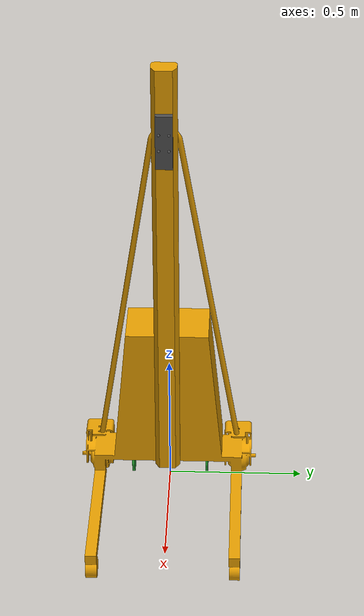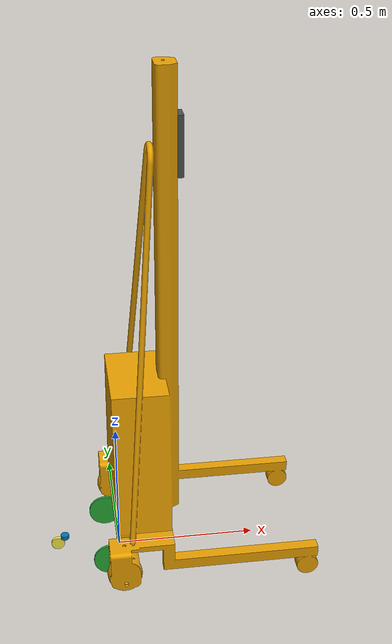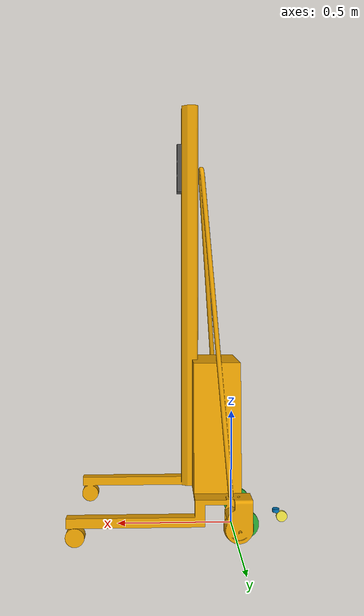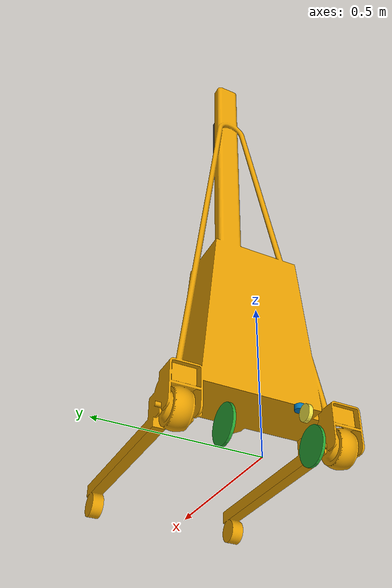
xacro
<?xml version="1.0" encoding="UTF-8"?>
<robot name="minilift" xmlns:xacro="http://ros.org/wiki/xacro">

<xacro:include filename="$(find minilift_description)/urdf/lfl.urdf.xacro" />
<xacro:lfl_base prefix="BMR001"/>

<!-- common stuff -->
<xacro:include filename="$(find ur_description)/urdf/common.gazebo.xacro" />

</robot>

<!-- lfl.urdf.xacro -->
<robot  xmlns:xacro="http://ros.org/wiki/xacro"
        name="lfl" >

<xacro:macro name="lfl_base" params="prefix">

    <xacro:include filename="$(find minilift_description)/urdf/caster.urdf.xacro" />
    <xacro:include filename="$(find minilift_description)/urdf/wheel.urdf.xacro" />
    <xacro:include filename="$(find minilift_description)/urdf/materials.urdf.xacro" />

    <xacro:arg name="mesh_enabled" default="false" />
    <xacro:arg name="robot_namespace" default="/"/>

    <link   name = "${prefix}_lfl_base">
        <inertial>
            <origin xyz="-0.108 0 -0.02579" rpy="0 0 0"/>
            <mass value="3.978"/>
            <inertia ixx="0.021858680" ixy="0.0" ixz="0.010020353"
                    iyy="0.078572349" iyz="-0.0"
                    izz="0.091971324"/>
        </inertial>
        <visual>
                <origin xyz="0 0 0" rpy="0 0 0" />
                <geometry>
                    <mesh filename="package://minilift_description/meshes/visual/LFL_xyz.stl" />
                </geometry>
        </visual>
        <collision>
                <origin xyz="0 0 0" rpy="0 0 0" />
                <geometry>
                    <mesh filename="package://minilift_description/meshes/visual/LFL_xyz.stl" />
                </geometry>
        </collision>
    </link>

    <link   name =  "${prefix}_base_footprint"/>

    <joint name = "${prefix}_base_joint"  type = "fixed">
        <parent link="${prefix}_base_footprint"/>
        <child link="${prefix}_lfl_base"/>
        <origin xyz="0.0 0.0 0.09188" rpy="0 0 0" />
        <axis xyz="0 1 0" rpy="0 0 0" />
    </joint>

 <!-- LIFTPLATE -->

  <link name="${prefix}_lfl_liftplate">
    <visual>
      <origin xyz="0 0 0" rpy="0 0 3.14159"/>
      <geometry>
        <mesh filename="package://minilift_description/meshes/visual/LFL_liftplate.stl"/>
      </geometry>
      <material name="dark_grey"/>
    </visual>
    <collision>
      <origin xyz="0 0 0" rpy="0 0 3.14159"/>
      <geometry>
        <mesh filename="package://minilift_description/meshes/collision/LFL_liftplate.stl"/>
      </geometry>
    </collision>
  <inertial>
    <mass value="1"/>
    <inertia ixx="0.01" ixy="0.0" ixz="0.0" iyy="0.01" iyz="0.0" izz="0.01"/>
  </inertial>
  </link>

  <gazebo reference="${prefix}_lfl_liftplate">
    <material>Gazebo/DarkGrey</material>
  </gazebo>

  <joint name="${prefix}_lfl_lift" type="prismatic">
      <origin rpy="0 0 3.14159" xyz="0.22 0.0 1"/>
      <parent link="${prefix}_lfl_base"/>
      <child link="${prefix}_lfl_liftplate"/>
      <axis xyz="0 0 1"/>
      <limit effort="100.0" lower="0.15" upper="0.56" velocity="0.05"/>
      <dynamics damping="0.5" friction="0.06"/>
  </joint>

  <!-- transmissions for Gazebo -->

  <transmission name="${prefix}_lfl_lift_trans">
    <type>transmission_interface/SimpleTransmission</type>
    <joint name="${prefix}_lfl_lift">
        <hardwareInterface>hardware_interface/PositionJointInterface</hardwareInterface>
    </joint>
    <actuator name="${prefix}_lfl_lift_motor">
        <mechanicalReduction>1</mechanicalReduction>
        <hardwareInterface>hardware_interface/PositionJointInterface</hardwareInterface>
    </actuator>
  </transmission>

    <xacro:caster caster_prefix="rear" parent_link="${prefix}_lfl_base" >
        <origin xyz="-0.20 0.0 -0.02533" rpy="0 0 0" />
    </xacro:caster>

    <xacro:wheel wheel_prefix="left" parent_link="${prefix}_lfl_base" >
        <origin xyz="-0.04 0.14 -0.045" rpy="0 0 0" />
    </xacro:wheel>

    <xacro:wheel wheel_prefix="right" parent_link="${prefix}_lfl_base" >
        <origin xyz="-0.04 -0.14 -0.045" rpy="0 0 0" />
    </xacro:wheel>

    <gazebo>
        <plugin name="gazebo_ros_control" filename="libgazebo_ros_control.so">
        <robotNamespace>$(arg robot_namespace)</robotNamespace>
        <legacyModeNS>true</legacyModeNS>
        </plugin>
    </gazebo>

</xacro:macro>

</robot>

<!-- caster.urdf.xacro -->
<robot xmlns:xacro="http://ros.org/wiki/xacro" >

	<!-- Caster Dimensions -->
    <xacro:property name="caster_wheel_length" value="0.02333" />
    <xacro:property name="caster_wheel_radius" value="0.024165" />
    <xacro:property name="caster_base_length" value="0.015" />
    <xacro:property name="caster_base_radius" value="0.015" />
	<xacro:property name="caster_base_joint_x" value="-0.02626" />
    <xacro:property name="caster_base_joint_z" value="-0.042385" />
    <xacro:property name="caster_base_link_z" value="-0.05615" />
    <xacro:property name="M_PI" value="3.14" />

	<xacro:property name="wheel_kp" value="600000" />
    <xacro:property name="wheel_kd" value="3" />
    <xacro:property name="wheel_mu1" value="10000000" />
    <xacro:property name="wheel_mu2" value="10000000" />

<xacro:macro name="caster" params="caster_prefix parent_link *joint_pose">
		<!-- Caster Wheel Link -->
		<link name="${caster_prefix}_caster_link">
			<inertial>
				<mass value="0.03837" />
				<origin xyz="0 0 0" />
				<inertia  ixx="0.000008221" ixy="0" ixz="0" iyy="0.000013003" iyz="0" izz="0.000008221" />
				</inertial>
			<visual>
                <origin xyz="0 0 0" rpy="${M_PI/2} 0 0" />
				<geometry>
					<cylinder length="${caster_wheel_length/2}" radius="${caster_wheel_radius}" />
				</geometry>
			</visual>
			<collision>
				<origin xyz="0 0 0" rpy="${M_PI/2} 0 0" />
				<geometry>
					<cylinder length="${caster_wheel_length/2}" radius="${caster_wheel_radius}" />
				</geometry>
			</collision>
		</link>

		<!-- Caster Base Link -->
        <link name="${caster_prefix}_caster_base">
			<inertial>
				<mass value="0.06597" />
				<origin xyz="-0.01204 0 -0.01454" />
				<inertia  ixx="0.000039912" ixy="0" ixz="0.000017794" iyy="0.000050728" iyz="0" izz="0.000035261" />
			</inertial>
			<visual>
					<origin xyz="0 0 ${-caster_base_radius}" rpy="0 0 0" />
					<geometry>
						<cylinder length="${caster_base_length}" radius="${caster_base_radius}" />
					</geometry>

			</visual>
			<collision>
				<origin xyz="0 0 ${-caster_base_radius}" rpy="0 0 0" />
				<geometry>
					<cylinder length="${caster_base_length}" radius="${caster_base_radius}" />
				</geometry>
			</collision>
		</link>

		<!-- Caster Base Link and Wheel Link Joint -->
        <joint name="${caster_prefix}_cwheel" type="continuous">
			<parent link="${caster_prefix}_caster_base"/>
			<child link="${caster_prefix}_caster_link"/>
			<origin xyz="${caster_base_joint_x} 0 ${caster_base_joint_z}" rpy="0 0 0" />
			<axis xyz="0 1 0" rpy="0 0 0" />

		</joint>

		<!-- Caster base and parent joint -->
		<joint name="${caster_prefix}_caster" type="continuous">
			<parent link="${parent_link}"/>
			<child link="${caster_prefix}_caster_base"/>
			<xacro:insert_block name="joint_pose"/>
			<axis xyz="0 0 1" rpy="0 0 0" />
			<dynamics friction="0.100" />

		</joint>

		<gazebo reference="${caster_prefix}_caster_link">
			<mu1 value="${wheel_mu1}"/>
			<mu2 value="${wheel_mu2}"/>
			<kp>${wheel_kp}</kp>
    		<kd>${wheel_kd}</kd>
			<dampingFactor>0.05</dampingFactor>
			<fdir1 value="1 0 0"/>
		</gazebo>

        <gazebo reference="${caster_prefix}_caster_base">
			<mu1 value="${wheel_mu1}"/>
			<mu2 value="${wheel_mu2}"/>
			<kp>${wheel_kp}</kp>
    		<kd>${wheel_kd}</kd>
			<fdir1 value="1 0 0"/>
		</gazebo>

		<transmission name="${caster_prefix}_caster_trans" type="SimpleTransmission">
			<type>transmission_interface/SimpleTransmission</type>
			<actuator name="${caster_prefix}_caster_motor">
				<mechanicalReduction>1</mechanicalReduction>
			</actuator>
			<joint name="${caster_prefix}_caster">
				<hardwareInterface>hardware_interface/EffortJointInterface</hardwareInterface>
			</joint>
		</transmission>

		<transmission name="${caster_prefix}_casterbase_trans" type="SimpleTransmission">
			<type>transmission_interface/SimpleTransmission</type>
			<actuator name="${caster_prefix}_casterbase_motor">
				<mechanicalReduction>1</mechanicalReduction>
			</actuator>
			<joint name="${caster_prefix}_cwheel">
				<hardwareInterface>hardware_interface/EffortJointInterface</hardwareInterface>
			</joint>
		</transmission>

	</xacro:macro>

</robot>

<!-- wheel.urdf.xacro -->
<robot name="wheel" xmlns:xacro="http://ros.org/wiki/xacro" >

	<xacro:property name="wheel_kp" value="600000" />
    <xacro:property name="wheel_kd" value="3" />
    <xacro:property name="wheel_mu1" value="10000000" />
    <xacro:property name="wheel_mu2" value="10000000" />

<xacro:macro name="wheel" params="wheel_prefix parent_link *joint_pose">

		<!-- Wheel Link -->
		<link name="${wheel_prefix}_wheel_link">
			<inertial>
				<mass value="0.144" />
				<origin xyz="0 0 0" rpy="${M_PI/2} 0 0" />
				<inertia  ixx="0.00008929863" ixy="0" ixz="0" iyy="0.000168983" iyz="0" izz="0.00008929863" />

			</inertial>
			<visual>
				<material name="Green"/>
					<origin xyz="0 0 0" rpy="${M_PI/2} 0 0" />
					<geometry>
						<cylinder length="0.009" radius="0.061" />
					</geometry>
			</visual>
			<collision>
				<origin xyz="0 0 0" rpy="${M_PI/2} 0 0" />
				<geometry>
						<cylinder length="0.009" radius="0.061" />
				</geometry>
			</collision>
		</link>

		<!-- Wheel Joint -->
		<joint name="${wheel_prefix}_wheel" type="continuous">
			<parent link="${parent_link}"/>
			<child link="${wheel_prefix}_wheel_link"/>
			<xacro:insert_block name="joint_pose"/>
			<axis xyz="0 1 0" rpy="0 0 0" />
			<dynamics damping="0.5" friction="100.0" />
		</joint>

		<!-- mu1 - 100 , mu2 - 100 , kp - 600000 kd -1  -->
		<gazebo reference="${wheel_prefix}_wheel_link">
			<mu1 value="${wheel_mu1}"/>
			<mu2 value="${wheel_mu2}"/>
			<kp>${wheel_kp}</kp>
    		<kd>${wheel_kd}</kd>
			<dampingFactor>0.05</dampingFactor>
			<fdir1 value="1 0 0"/>
		</gazebo>

		<transmission name="${wheel_prefix}_wheel_trans" type="SimpleTransmission">
			<type>transmission_interface/SimpleTransmission</type>
			<actuator name="${wheel_prefix}_wheel_motor">
				<mechanicalReduction>1</mechanicalReduction>
			</actuator>
			<joint name="${wheel_prefix}_wheel">
				<hardwareInterface>hardware_interface/VelocityJointInterface</hardwareInterface>
			</joint>
		</transmission>

</xacro:macro>

</robot>
